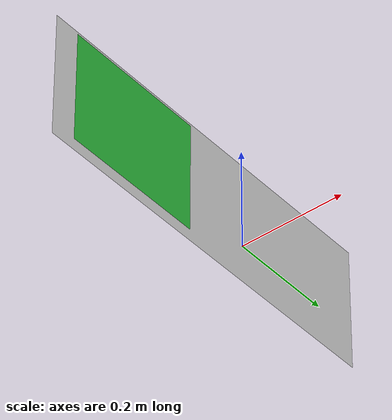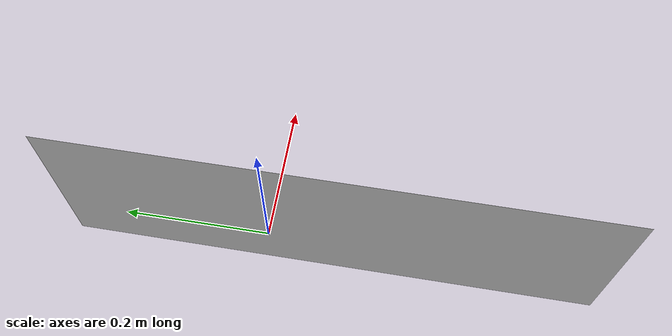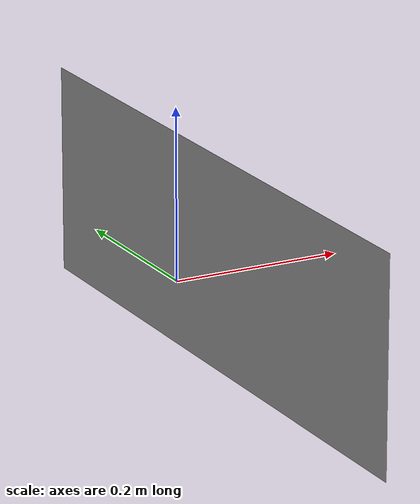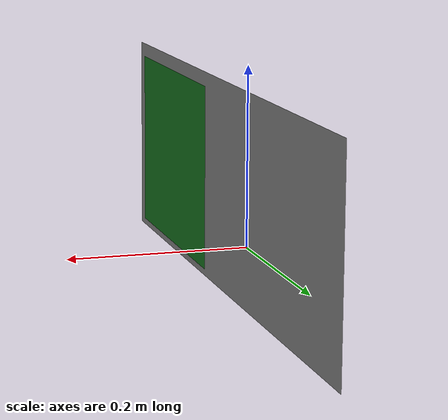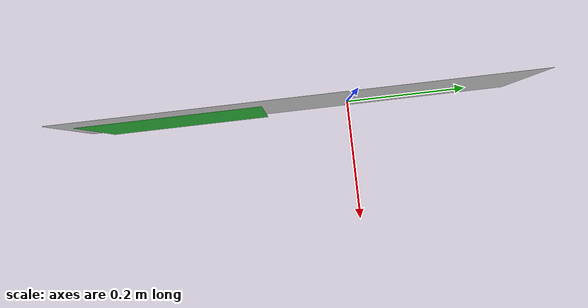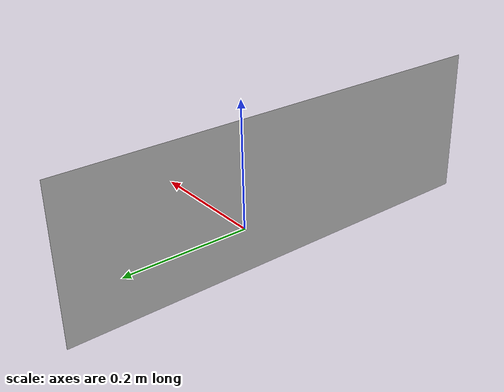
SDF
<?xml version='1.0'?>
<sdf version='1.7'>
  <model name='traffic_light_green'>
    <link name='link_0'>
      <inertial>
        <mass>0.0221441</mass>
        <inertia>
          <ixx>0.00113117</ixx>
          <ixy>0</ixy>
          <ixz>0</ixz>
          <iyy>0.000137192</iyy>
          <iyz>0</iyz>
          <izz>0.00104885</izz>
        </inertia>
        <pose>0 0 0 0 -0 0</pose>
      </inertial>
      <pose>-0 -0.084737 0.049326 0 -0 0</pose>
      <visual name='visual'>
        <pose>0 0 0 0 -0 0</pose>
        <geometry>
          <box>
            <size>0 0.743981 0.243877</size>
          </box>
        </geometry>
        <material>
          <lighting>1</lighting>
          <script>
            <uri>file://media/materials/scripts/gazebo.material</uri>
            <name>Gazebo/Mustard</name>
          </script>
          <shader type='pixel'/>
          <emissive>0 0 0 1</emissive>
        </material>
        <transparency>0</transparency>
        <cast_shadows>1</cast_shadows>
      </visual>
      <collision name='collision'>
        <laser_retro>0</laser_retro>
        <max_contacts>10</max_contacts>
        <pose>0 0 0 0 -0 0</pose>
        <geometry>
          <box>
            <size>0 0.743981 0.243877</size>
          </box>
        </geometry>

      </collision>
    </link>
    <link name='link_1'>
      <inertial>
        <mass>0.00190017</mass>
        <inertia>
          <ixx>1.948e-05</ixx>
          <ixy>0</ixy>
          <ixz>0</ixz>
          <iyy>7.59e-06</iyy>
          <iyz>0</iyz>
          <izz>1.221e-05</izz>
        </inertia>
        <pose>0 0 0 0 -0 0</pose>
      </inertial>
      <pose>0.0066205 -0.276538 0.049326 0 -0 0</pose>
      <gravity>1</gravity>
      <self_collide>0</self_collide>
      <kinematic>0</kinematic>
      <enable_wind>0</enable_wind>
      <visual name='visual'>
        <pose>0 0 0 0 -0 0</pose>
        <geometry>
          <box>
            <size>0. 0.275892 0.216628</size>
          </box>
        </geometry>
        <material>
          <lighting>1</lighting>
          <script>
            <uri>file://media/materials/scripts/gazebo.material</uri>
            <name>Gazebo/Green</name>
          </script>
          <shader type='pixel'/>
        </material>
        <transparency>0</transparency>
        <cast_shadows>1</cast_shadows>
      </visual>
      <collision name='collision'>
        <laser_retro>0</laser_retro>
        <max_contacts>10</max_contacts>
        <pose>0 0 0 0 -0 0</pose>
        <geometry>
          <box>
            <size>0.0 0.275892 0.216628</size>
          </box>
        </geometry>
      </collision>
    </link>
    <static>1</static>
    <allow_auto_disable>1</allow_auto_disable>
  </model>
</sdf>
